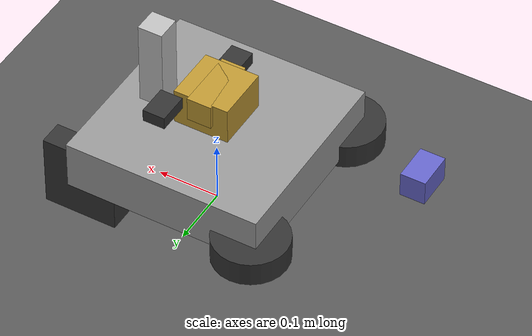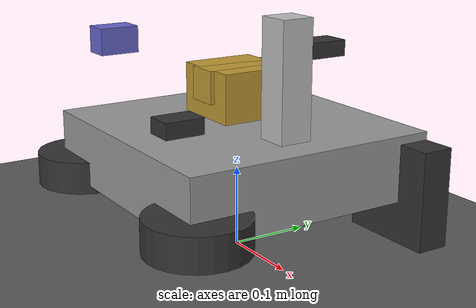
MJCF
<mujoco model="mini_infantry">
    <option timestep="0.001" gravity="0 0 -9.81" />
    <default>
        <!-- Rotor inertia: adds effective inertia to every joint so the (real-robot)
         controller gains behave stably on this lightweight model. -->
        <joint armature="0.015" />
    </default>
    <worldbody>
        <light directional="true" diffuse="0.7 0.7 0.7" dir="0 -1 -1" pos="2 3 4" />
        <geom name="floor" type="plane" size="6 6 0.05" pos="0 0 -0.05" rgba="0.35 0.35 0.35 1" contype="0" conaffinity="0" />

        <!-- Chassis is fixed to the world (no free joint): no contact tuning needed.
         Wheels / gimbal / friction wheels spin under their own motor torques. -->
        <body name="base" pos="0 0 0.12">
            <freejoint/>
            <geom name="chassis" type="box" size="0.16 0.16 0.04" mass="3.0" rgba="0.6 0.6 0.6 1" contype="0" conaffinity="0" />
            <site name="base_imu" pos="0 0 0.03" />

            <!-- 4 omni wheels (only spin simulated) -->
            <body name="wheel_rf" pos="0.14 0.14 -0.03">
                <joint name="wheel_rf" type="hinge" axis="0 1 0" damping="0.01" />
                <geom name="wheel_rf_g" type="box" size="0.06 0.02 0.06" euler="0 0 0" mass="0.15" rgba="0.2 0.2 0.2 1" contype="0" conaffinity="0" />
            </body>
            <body name="wheel_lf" pos="-0.14 0.14 -0.03">
                <joint name="wheel_lf" type="hinge" axis="0 1 0" damping="0.01" />
                <geom name="wheel_lf_g" type="cylinder" size="0.06 0.02" euler="0 0 0" mass="0.15" rgba="0.2 0.2 0.2 1" contype="0" conaffinity="0" />
            </body>
            <body name="wheel_lb" pos="-0.14 -0.14 -0.03">
                <joint name="wheel_lb" type="hinge" axis="0 1 0" damping="0.01" />
                <geom name="wheel_lb_g" type="cylinder" size="0.06 0.02" euler="0 0 0" mass="0.15" rgba="0.2 0.2 0.2 1" contype="0" conaffinity="0" />
            </body>
            <body name="wheel_rb" pos="0.14 -0.14 -0.03">
                <joint name="wheel_rb" type="hinge" axis="0 1 0" damping="0.01" />
                <geom name="wheel_rb_g" type="cylinder" size="0.06 0.02" euler="0 0 0" mass="0.15" rgba="0.2 0.2 0.2 1" contype="0" conaffinity="0" />
            </body>

            <!-- Gimbal yaw -->
            <body name="yaw" pos="0 0 0.08">
                <joint name="yaw" type="hinge" axis="0 0 1" damping="0.02" />
                <geom name="yaw_g" type="box" size="0.045 0.045 0.03" mass="0.5" rgba="0.75 0.6 0.2 1" contype="0" conaffinity="0" />

                <!-- Gimbal pitch -->
                <body name="pitch" pos="0 0 0.01">
                    <joint name="pitch" type="hinge" axis="0 1 0" damping="0.02" />
                    <site name="gimbal_imu" pos="0 0 0.01" />

                    <!-- barrel: offset COM -> gravity droop that the pitch motor must hold -->
                    <geom name="barrel" type="box" size="0.02 0.02 0.09" pos="0.10 0 0.0" mass="0.12" rgba="0.75 0.75 0.75 1" contype="0" conaffinity="0" />
                    <geom name="pitch_g" type="box" size="0.02 0.05 0.02" pos="0 0 0" mass="0.3" rgba="0.75 0.6 0.2 1" contype="0" conaffinity="0" />

                    <!-- two friction wheels -->
                    <body name="left_friction" pos="0.03 0.1 0.035">
                        <joint name="left_friction" type="hinge" axis="1 0 0" damping="0.005" />
                        <geom name="left_friction_g" type="box" size="0.018 0.025 0.01" mass="0.03" rgba="0.2 0.2 0.2 1" contype="0" conaffinity="0" />
                    </body>
                    <body name="right_friction" pos="0.03 -0.1 -0.035">
                        <joint name="right_friction" type="hinge" axis="1 0 0" damping="0.005" />
                        <geom name="right_friction_g" type="box" size="0.018 0.025 0.01" mass="0.03" rgba="0.2 0.2 0.2 1" contype="0" conaffinity="0" />
                    </body>

                    <!-- bullet feeder -->
                    <body name="bullet_feeder" pos="-0.34 0.0 0.0">
                        <joint name="bullet_feeder" type="hinge" axis="0 1 0" damping="0.005" />
                        <geom name="bullet_feeder_g" type="box" size="0.02 0.03 0.02" mass="0.04" rgba="0.4 0.4 0.8 1" contype="0" conaffinity="0" />
                    </body>
                </body>
            </body>
        </body>
    </worldbody>

    <actuator>
        <motor name="wheel_rf" joint="wheel_rf" ctrlrange="-30 30" />
        <motor name="wheel_lf" joint="wheel_lf" ctrlrange="-30 30" />
        <motor name="wheel_lb" joint="wheel_lb" ctrlrange="-30 30" />
        <motor name="wheel_rb" joint="wheel_rb" ctrlrange="-30 30" />
        <motor name="yaw" joint="yaw" ctrlrange="-10 10" />
        <motor name="pitch" joint="pitch" ctrlrange="-10 10" />
        <motor name="left_friction" joint="left_friction" ctrlrange="-10 10" />
        <motor name="right_friction" joint="right_friction" ctrlrange="-10 10" />
        <motor name="bullet_feeder" joint="bullet_feeder" ctrlrange="-10 10" />
    </actuator>

    <sensor>
        <gyro name="gimbal_gyro" site="gimbal_imu" />
        <accelerometer name="gimbal_acc" site="gimbal_imu" />
        <gyro name="base_gyro" site="base_imu" />
        <accelerometer name="base_acc" site="base_imu" />
    </sensor>
</mujoco>
